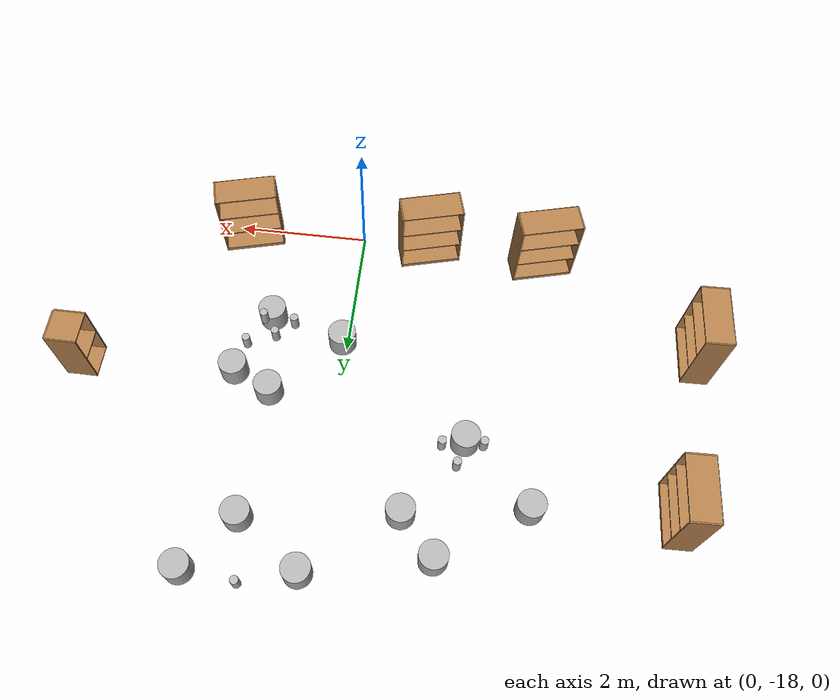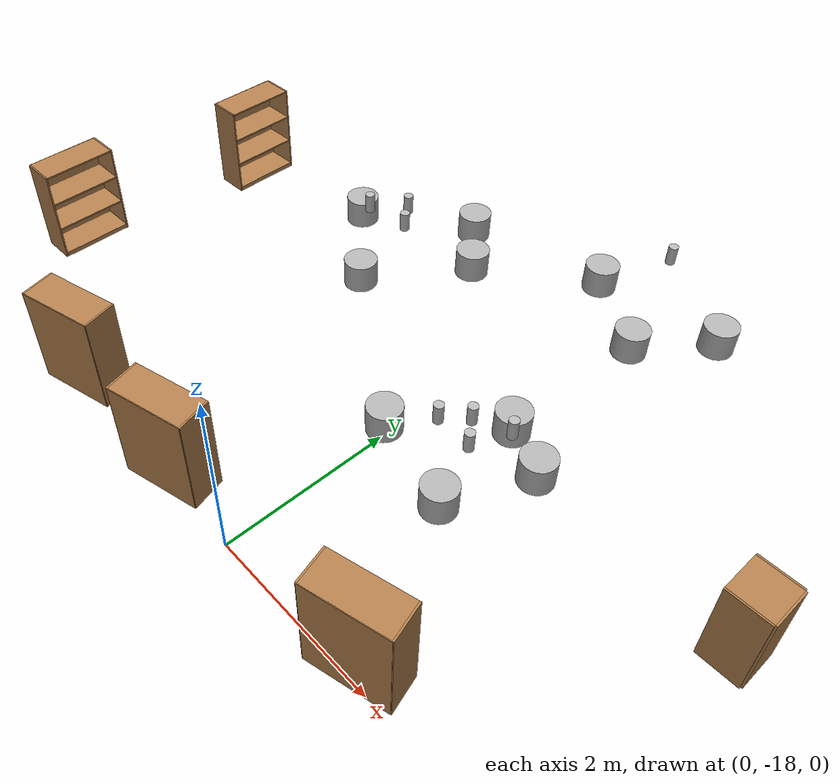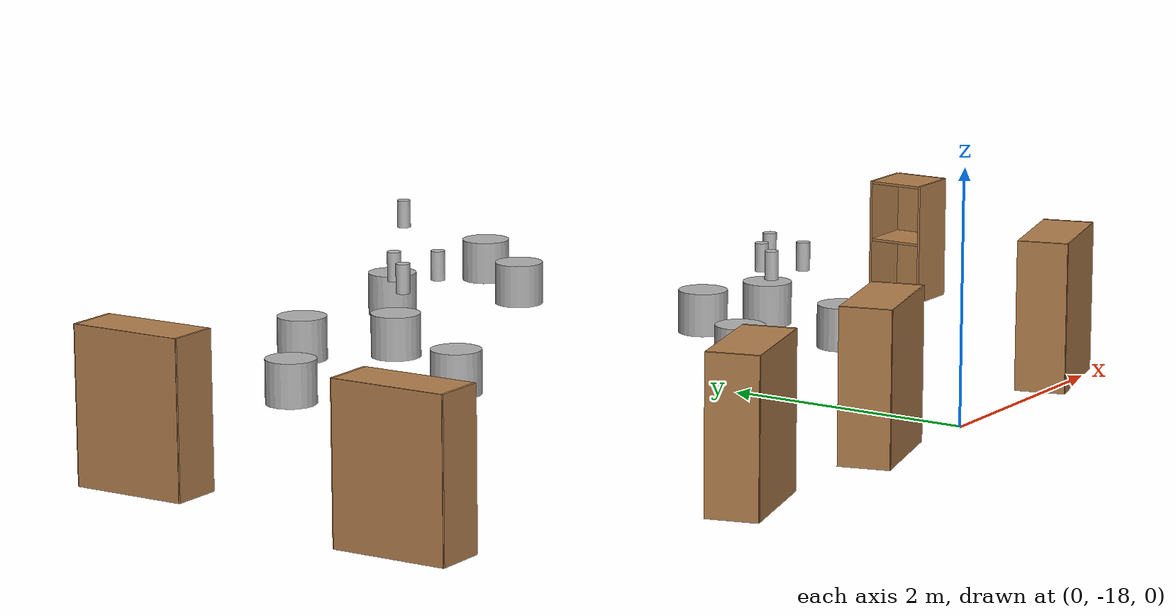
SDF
<sdf version="1.9">
 <world name="world_restaurant">
  <model name="bookshelf">
   <static>true</static>
   <link name="link">
    <inertial>
     <mass>1</mass>
     <inertia><ixx>1</ixx><ixy>0</ixy><ixz>0</ixz><iyy>1</iyy><iyz>0</iyz><izz>1</izz></inertia>
    </inertial>
    <collision name="back">
     <pose>0 0.005 0.6 0 0 0</pose>
     <geometry><box><size>0.9 0.01 1.2</size></box></geometry>
    </collision>
    <visual name="visual1">
     <pose>0 0.005 0.6 0 0 0</pose>
     <geometry><box><size>0.9 0.01 1.2</size></box></geometry>
     <material>
      <script><uri>file://media/materials/scripts/gazebo.material</uri><name>Gazebo/Wood</name></script>
     </material>
    </visual>
    <collision name="left_side">
     <pose>0.45 -0.195 0.6 0 0 0</pose>
     <geometry><box><size>0.02 0.4 1.2</size></box></geometry>
    </collision>
    <visual name="visual2">
     <pose>0.45 -0.195 0.6 0 0 0</pose>
     <geometry><box><size>0.02 0.4 1.2</size></box></geometry>
     <material>
      <script><uri>file://media/materials/scripts/gazebo.material</uri><name>Gazebo/Wood</name></script>
     </material>
    </visual>
    <collision name="right_side">
     <pose>-0.45 -0.195 0.6 0 0 0</pose>
     <geometry><box><size>0.02 0.4 1.2</size></box></geometry>
    </collision>
    <visual name="visual3">
     <pose>-0.45 -0.195 0.6 0 0 0</pose>
     <geometry><box><size>0.02 0.4 1.2</size></box></geometry>
     <material>
      <script><uri>file://media/materials/scripts/gazebo.material</uri><name>Gazebo/Wood</name></script>
     </material>
    </visual>
    <collision name="bottom">
     <pose>0 -0.195 0.03 0 0 0</pose>
     <geometry><box><size>0.88 0.4 0.06</size></box></geometry>
    </collision>
    <visual name="visual4">
     <pose>0 -0.195 0.03 0 0 0</pose>
     <geometry><box><size>0.88 0.4 0.06</size></box></geometry>
     <material>
      <script><uri>file://media/materials/scripts/gazebo.material</uri><name>Gazebo/Wood</name></script>
     </material>
    </visual>
    <collision name="top">
     <pose>0 -0.195 1.19 0 0 0</pose>
     <geometry><box><size>0.88 0.4 0.02</size></box></geometry>
    </collision>
    <visual name="visual5">
     <pose>0 -0.195 1.19 0 0 0</pose>
     <geometry><box><size>0.88 0.4 0.02</size></box></geometry>
     <material>
      <script><uri>file://media/materials/scripts/gazebo.material</uri><name>Gazebo/Wood</name></script>
     </material>
    </visual>
    <collision name="low_shelf">
     <pose>0 -0.195 0.43 0 0 0</pose>
     <geometry><box><size>0.88 0.4 0.02</size></box></geometry>
    </collision>
    <visual name="visual6">
     <pose>0 -0.195 0.43 0 0 0</pose>
     <geometry><box><size>0.88 0.4 0.02</size></box></geometry>
     <material>
      <script><uri>file://media/materials/scripts/gazebo.material</uri><name>Gazebo/Wood</name></script>
     </material>
    </visual>
    <collision name="high_shelf">
     <pose>0 -0.195 0.8 0 0 0</pose>
     <geometry><box><size>0.88 0.4 0.02</size></box></geometry>
    </collision>
    <visual name="visual7">
     <pose>0 -0.195 0.8 0 0 0</pose>
     <geometry><box><size>0.88 0.4 0.02</size></box></geometry>
     <material>
      <script><uri>file://media/materials/scripts/gazebo.material</uri><name>Gazebo/Wood</name></script>
     </material>
    </visual>
   </link>
   <pose>-5 -14 0 0 -0 1.6</pose>
  </model>
  <model name="beer_1_3">
   <link name="link">
    <pose>0 0 0.115 0 -0 0</pose>
    <inertial>
     <mass>0.39000000000000001</mass>
     <inertia>
      <ixx>0.00058</ixx>
      <ixy>0</ixy>
      <ixz>0</ixz>
      <iyy>0.00058</iyy>
      <iyz>0</iyz>
      <izz>0.00019000000000000001</izz>
     </inertia>
    </inertial>
    <collision name="collision">
     <geometry><cylinder><radius>0.055</radius><length>0.23000000000000001</length></cylinder></geometry>
    </collision>
    <visual name="visual">
     <geometry><cylinder><radius>0.055</radius><length>0.23000000000000001</length></cylinder></geometry>
     <material>
      <script>
       <uri>file:///home/joan/ros2_ws/install/turtlebot3/share/turtlebot3/models/worlds/model://beer/materials/scripts</uri>
       <uri>model://beer/materials/textures</uri>
       <name>Beer/Diffuse</name>
      </script>
     </material>
    </visual>
   </link>
   <pose>0.76975 -12.2189 0.775 0 0 -7.8e-05</pose>
   <static>false</static>
  </model>
  <model name="cylinder_1_7">
   <pose>0.131344 -12.5614 0.364799 0 -0 0.0003</pose>
   <link name="cylinder_link">
    <inertial>
     <inertia>
      <ixx>0.14580000000000001</ixx>
      <ixy>0</ixy>
      <ixz>0</ixz>
      <iyy>0.14580000000000001</iyy>
      <iyz>0</iyz>
      <izz>0.125</izz>
     </inertia>
     <mass>1</mass>
    </inertial>
    <collision name="cylinder_collision">
     <geometry>
      <cylinder><radius>0.20000000000000001</radius><length>0.34999999999999998</length></cylinder>
     </geometry>
    </collision>
    <visual name="cylinder_visual">
     <geometry>
      <cylinder><radius>0.20000000000000001</radius><length>0.34999999999999998</length></cylinder>
     </geometry>
     <material>
      <ambient>0.3 0.3 0.3 1</ambient>
      <diffuse>0.7 0.7 0.7 1</diffuse>
      <specular>1 1 1 1</specular>
     </material>
    </visual>
   </link>
   <static>false</static>
  </model>
  <model name="cylinder_1_8">
   <pose>1.66853 -12.4257 0.364799 0 -0 0.0003</pose>
   <link name="cylinder_link">
    <inertial>
     <inertia>
      <ixx>0.14580000000000001</ixx>
      <ixy>0</ixy>
      <ixz>0</ixz>
      <iyy>0.14580000000000001</iyy>
      <iyz>0</iyz>
      <izz>0.125</izz>
     </inertia>
     <mass>1</mass>
    </inertial>
    <collision name="cylinder_collision">
     <geometry>
      <cylinder><radius>0.20000000000000001</radius><length>0.34999999999999998</length></cylinder>
     </geometry>
    </collision>
    <visual name="cylinder_visual">
     <geometry>
      <cylinder><radius>0.20000000000000001</radius><length>0.34999999999999998</length></cylinder>
     </geometry>
     <material>
      <ambient>0.3 0.3 0.3 1</ambient>
      <diffuse>0.7 0.7 0.7 1</diffuse>
      <specular>1 1 1 1</specular>
     </material>
    </visual>
   </link>
   <static>false</static>
  </model>
  <model name="cylinder_1_9">
   <pose>1.04747 -13.2016 0.364799 0 -0 0.0003</pose>
   <link name="cylinder_link">
    <inertial>
     <inertia>
      <ixx>0.14580000000000001</ixx>
      <ixy>0</ixy>
      <ixz>0</ixz>
      <iyy>0.14580000000000001</iyy>
      <iyz>0</iyz>
      <izz>0.125</izz>
     </inertia>
     <mass>1</mass>
    </inertial>
    <collision name="cylinder_collision">
     <geometry>
      <cylinder><radius>0.20000000000000001</radius><length>0.34999999999999998</length></cylinder>
     </geometry>
    </collision>
    <visual name="cylinder_visual">
     <geometry>
      <cylinder><radius>0.20000000000000001</radius><length>0.34999999999999998</length></cylinder>
     </geometry>
     <material>
      <ambient>0.3 0.3 0.3 1</ambient>
      <diffuse>0.7 0.7 0.7 1</diffuse>
      <specular>1 1 1 1</specular>
     </material>
    </visual>
   </link>
   <static>false</static>
  </model>
  <model name="cylinder_1_10">
   <pose>0.974089 -15.0716 0.364799 0 0 -0.005798</pose>
   <link name="cylinder_link">
    <inertial>
     <inertia>
      <ixx>0.14580000000000001</ixx>
      <ixy>0</ixy>
      <ixz>0</ixz>
      <iyy>0.14580000000000001</iyy>
      <iyz>0</iyz>
      <izz>0.125</izz>
     </inertia>
     <mass>1</mass>
    </inertial>
    <collision name="cylinder_collision">
     <geometry>
      <cylinder><radius>0.20000000000000001</radius><length>0.34999999999999998</length></cylinder>
     </geometry>
    </collision>
    <visual name="cylinder_visual">
     <geometry>
      <cylinder><radius>0.20000000000000001</radius><length>0.34999999999999998</length></cylinder>
     </geometry>
     <material>
      <ambient>0.3 0.3 0.3 1</ambient>
      <diffuse>0.7 0.7 0.7 1</diffuse>
      <specular>1 1 1 1</specular>
     </material>
    </visual>
   </link>
   <static>false</static>
  </model>
  <model name="cylinder_1_11">
   <pose>1.13113 -16.2878 0.364799 0 -0 0.0003</pose>
   <link name="cylinder_link">
    <inertial>
     <inertia>
      <ixx>0.14580000000000001</ixx>
      <ixy>0</ixy>
      <ixz>0</ixz>
      <iyy>0.14580000000000001</iyy>
      <iyz>0</iyz>
      <izz>0.125</izz>
     </inertia>
     <mass>1</mass>
    </inertial>
    <collision name="cylinder_collision">
     <geometry>
      <cylinder><radius>0.20000000000000001</radius><length>0.34999999999999998</length></cylinder>
     </geometry>
    </collision>
    <visual name="cylinder_visual">
     <geometry>
      <cylinder><radius>0.20000000000000001</radius><length>0.34999999999999998</length></cylinder>
     </geometry>
     <material>
      <ambient>0.3 0.3 0.3 1</ambient>
      <diffuse>0.7 0.7 0.7 1</diffuse>
      <specular>1 1 1 1</specular>
     </material>
    </visual>
   </link>
   <static>false</static>
  </model>
  <model name="cylinder_1_12">
   <pose>0.05 -16 0.364799 0 -0 0</pose>
   <link name="cylinder_link">
    <inertial>
     <inertia>
      <ixx>0.14580000000000001</ixx>
      <ixy>0</ixy>
      <ixz>0</ixz>
      <iyy>0.14580000000000001</iyy>
      <iyz>0</iyz>
      <izz>0.125</izz>
     </inertia>
     <mass>1</mass>
    </inertial>
    <collision name="cylinder_collision">
     <geometry>
      <cylinder><radius>0.20000000000000001</radius><length>0.34999999999999998</length></cylinder>
     </geometry>
    </collision>
    <visual name="cylinder_visual">
     <geometry>
      <cylinder><radius>0.20000000000000001</radius><length>0.34999999999999998</length></cylinder>
     </geometry>
     <material>
      <ambient>0.3 0.3 0.3 1</ambient>
      <diffuse>0.7 0.7 0.7 1</diffuse>
      <specular>1 1 1 1</specular>
     </material>
    </visual>
   </link>
   <static>false</static>
  </model>
  <model name="cylinder_1_13">
   <pose>1.53352 -15.3395 0.364799 0 -0 0.0003</pose>
   <link name="cylinder_link">
    <inertial>
     <inertia>
      <ixx>0.14580000000000001</ixx>
      <ixy>0</ixy>
      <ixz>0</ixz>
      <iyy>0.14580000000000001</iyy>
      <iyz>0</iyz>
      <izz>0.125</izz>
     </inertia>
     <mass>1</mass>
    </inertial>
    <collision name="cylinder_collision">
     <geometry>
      <cylinder><radius>0.20000000000000001</radius><length>0.34999999999999998</length></cylinder>
     </geometry>
    </collision>
    <visual name="cylinder_visual">
     <geometry>
      <cylinder><radius>0.20000000000000001</radius><length>0.34999999999999998</length></cylinder>
     </geometry>
     <material>
      <ambient>0.3 0.3 0.3 1</ambient>
      <diffuse>0.7 0.7 0.7 1</diffuse>
      <specular>1 1 1 1</specular>
     </material>
    </visual>
   </link>
   <static>false</static>
  </model>
  <model name="cylinder_1_17">
   <pose>-1.58699 -12.9405 0.364799 0 -0 0.0003</pose>
   <link name="cylinder_link">
    <inertial>
     <inertia>
      <ixx>0.14580000000000001</ixx>
      <ixy>0</ixy>
      <ixz>0</ixz>
      <iyy>0.14580000000000001</iyy>
      <iyz>0</iyz>
      <izz>0.125</izz>
     </inertia>
     <mass>1</mass>
    </inertial>
    <collision name="cylinder_collision">
     <geometry>
      <cylinder><radius>0.20000000000000001</radius><length>0.34999999999999998</length></cylinder>
     </geometry>
    </collision>
    <visual name="cylinder_visual">
     <geometry>
      <cylinder><radius>0.20000000000000001</radius><length>0.34999999999999998</length></cylinder>
     </geometry>
     <material>
      <ambient>0.3 0.3 0.3 1</ambient>
      <diffuse>0.7 0.7 0.7 1</diffuse>
      <specular>1 1 1 1</specular>
     </material>
    </visual>
   </link>
   <static>false</static>
  </model>
  <model name="cylinder_1_18">
   <pose>-1.86176 -14.6326 0.364799 0 -0 0.0003</pose>
   <link name="cylinder_link">
    <inertial>
     <inertia>
      <ixx>0.14580000000000001</ixx>
      <ixy>0</ixy>
      <ixz>0</ixz>
      <iyy>0.14580000000000001</iyy>
      <iyz>0</iyz>
      <izz>0.125</izz>
     </inertia>
     <mass>1</mass>
    </inertial>
    <collision name="cylinder_collision">
     <geometry>
      <cylinder><radius>0.20000000000000001</radius><length>0.34999999999999998</length></cylinder>
     </geometry>
    </collision>
    <visual name="cylinder_visual">
     <geometry>
      <cylinder><radius>0.20000000000000001</radius><length>0.34999999999999998</length></cylinder>
     </geometry>
     <material>
      <ambient>0.3 0.3 0.3 1</ambient>
      <diffuse>0.7 0.7 0.7 1</diffuse>
      <specular>1 1 1 1</specular>
     </material>
    </visual>
   </link>
   <static>false</static>
  </model>
  <model name="cylinder_1_19">
   <pose>-2.8 -13.7663 0.364799 0 -0 0</pose>
   <link name="cylinder_link">
    <inertial>
     <inertia>
      <ixx>0.14580000000000001</ixx>
      <ixy>0</ixy>
      <ixz>0</ixz>
      <iyy>0.14580000000000001</iyy>
      <iyz>0</iyz>
      <izz>0.125</izz>
     </inertia>
     <mass>1</mass>
    </inertial>
    <collision name="cylinder_collision">
     <geometry>
      <cylinder><radius>0.20000000000000001</radius><length>0.34999999999999998</length></cylinder>
     </geometry>
    </collision>
    <visual name="cylinder_visual">
     <geometry>
      <cylinder><radius>0.20000000000000001</radius><length>0.34999999999999998</length></cylinder>
     </geometry>
     <material>
      <ambient>0.3 0.3 0.3 1</ambient>
      <diffuse>0.7 0.7 0.7 1</diffuse>
      <specular>1 1 1 1</specular>
     </material>
    </visual>
   </link>
   <static>false</static>
  </model>
  <model name="cylinder_1_20">
   <pose>-1.09581 -13.498 0.364799 0 -0 0.0003</pose>
   <link name="cylinder_link">
    <inertial>
     <inertia>
      <ixx>0.14580000000000001</ixx>
      <ixy>0</ixy>
      <ixz>0</ixz>
      <iyy>0.14580000000000001</iyy>
      <iyz>0</iyz>
      <izz>0.125</izz>
     </inertia>
     <mass>1</mass>
    </inertial>
    <collision name="cylinder_collision">
     <geometry>
      <cylinder><radius>0.20000000000000001</radius><length>0.34999999999999998</length></cylinder>
     </geometry>
    </collision>
    <visual name="cylinder_visual">
     <geometry>
      <cylinder><radius>0.20000000000000001</radius><length>0.34999999999999998</length></cylinder>
     </geometry>
     <material>
      <ambient>0.3 0.3 0.3 1</ambient>
      <diffuse>0.7 0.7 0.7 1</diffuse>
      <specular>1 1 1 1</specular>
     </material>
    </visual>
   </link>
   <static>false</static>
  </model>
  <model name="beer_1_3_1">
   <link name="link">
    <pose>0 0 0.115 0 -0 0</pose>
    <inertial>
     <mass>0.39000000000000001</mass>
     <inertia>
      <ixx>0.00058</ixx>
      <ixy>0</ixy>
      <ixz>0</ixz>
      <iyy>0.00058</iyy>
      <iyz>0</iyz>
      <izz>0.00019000000000000001</izz>
     </inertia>
    </inertial>
    <collision name="collision">
     <geometry><cylinder><radius>0.055</radius><length>0.23000000000000001</length></cylinder></geometry>
    </collision>
    <visual name="visual">
     <geometry><cylinder><radius>0.055</radius><length>0.23000000000000001</length></cylinder></geometry>
     <material>
      <script>
       <uri>file:///home/joan/ros2_ws/install/turtlebot3/share/turtlebot3/models/worlds/model://beer/materials/scripts</uri>
       <uri>model://beer/materials/textures</uri>
       <name>Beer/Diffuse</name>
      </script>
     </material>
    </visual>
   </link>
   <pose>0.917031 -15.6624 0.775 0 0 -7.8e-05</pose>
   <static>false</static>
  </model>
  <model name="beer_1_3_2">
   <link name="link">
    <pose>0 0 0.115 0 -0 0</pose>
    <inertial>
     <mass>0.39000000000000001</mass>
     <inertia>
      <ixx>0.00058</ixx>
      <ixy>0</ixy>
      <ixz>0</ixz>
      <iyy>0.00058</iyy>
      <iyz>0</iyz>
      <izz>0.00019000000000000001</izz>
     </inertia>
    </inertial>
    <collision name="collision">
     <geometry><cylinder><radius>0.055</radius><length>0.23000000000000001</length></cylinder></geometry>
    </collision>
    <visual name="visual">
     <geometry><cylinder><radius>0.055</radius><length>0.23000000000000001</length></cylinder></geometry>
     <material>
      <script>
       <uri>file:///home/joan/ros2_ws/install/turtlebot3/share/turtlebot3/models/worlds/model://beer/materials/scripts</uri>
       <uri>model://beer/materials/textures</uri>
       <name>Beer/Diffuse</name>
      </script>
     </material>
    </visual>
   </link>
   <pose>1.29635 -15.5056 0.775 0 0 -7.8e-05</pose>
   <static>false</static>
  </model>
  <model name="beer_1_3_3">
   <link name="link">
    <pose>0 0 0.115 0 -0 0</pose>
    <inertial>
     <mass>0.39000000000000001</mass>
     <inertia>
      <ixx>0.00058</ixx>
      <ixy>0</ixy>
      <ixz>0</ixz>
      <iyy>0.00058</iyy>
      <iyz>0</iyz>
      <izz>0.00019000000000000001</izz>
     </inertia>
    </inertial>
    <collision name="collision">
     <geometry><cylinder><radius>0.055</radius><length>0.23000000000000001</length></cylinder></geometry>
    </collision>
    <visual name="visual">
     <geometry><cylinder><radius>0.055</radius><length>0.23000000000000001</length></cylinder></geometry>
     <material>
      <script>
       <uri>file:///home/joan/ros2_ws/install/turtlebot3/share/turtlebot3/models/worlds/model://beer/materials/scripts</uri>
       <uri>model://beer/materials/textures</uri>
       <name>Beer/Diffuse</name>
      </script>
     </material>
    </visual>
   </link>
   <pose>1.12425 -15.9241 0.775 0 0 -7.8e-05</pose>
   <static>false</static>
  </model>
  <model name="beer_1_3_4">
   <link name="link">
    <pose>0 0 0.115 0 -0 0</pose>
    <inertial>
     <mass>0.39000000000000001</mass>
     <inertia>
      <ixx>0.00058</ixx>
      <ixy>0</ixy>
      <ixz>0</ixz>
      <iyy>0.00058</iyy>
      <iyz>0</iyz>
      <izz>0.00019000000000000001</izz>
     </inertia>
    </inertial>
    <collision name="collision">
     <geometry><cylinder><radius>0.055</radius><length>0.23000000000000001</length></cylinder></geometry>
    </collision>
    <visual name="visual">
     <geometry><cylinder><radius>0.055</radius><length>0.23000000000000001</length></cylinder></geometry>
     <material>
      <script>
       <uri>file:///home/joan/ros2_ws/install/turtlebot3/share/turtlebot3/models/worlds/model://beer/materials/scripts</uri>
       <uri>model://beer/materials/textures</uri>
       <name>Beer/Diffuse</name>
      </script>
     </material>
    </visual>
   </link>
   <pose>0.688256 -15.8935 0.775 0 0 -7.8e-05</pose>
   <static>false</static>
  </model>
  <model name="beer_1_3_5">
   <link name="link">
    <pose>0 0 0.115 0 -0 0</pose>
    <inertial>
     <mass>0.39000000000000001</mass>
     <inertia>
      <ixx>0.00058</ixx>
      <ixy>0</ixy>
      <ixz>0</ixz>
      <iyy>0.00058</iyy>
      <iyz>0</iyz>
      <izz>0.00019000000000000001</izz>
     </inertia>
    </inertial>
    <collision name="collision">
     <geometry><cylinder><radius>0.055</radius><length>0.23000000000000001</length></cylinder></geometry>
    </collision>
    <visual name="visual">
     <geometry><cylinder><radius>0.055</radius><length>0.23000000000000001</length></cylinder></geometry>
     <material>
      <script>
       <uri>file:///home/joan/ros2_ws/install/turtlebot3/share/turtlebot3/models/worlds/model://beer/materials/scripts</uri>
       <uri>model://beer/materials/textures</uri>
       <name>Beer/Diffuse</name>
      </script>
     </material>
    </visual>
   </link>
   <pose>-1.7523 -13.975 0.975 0 -0 -0.0001</pose>
   <static>false</static>
  </model>
  <model name="beer_1_3_5_1">
   <link name="link">
    <pose>0 0 0.115 0 -0 0</pose>
    <inertial>
     <mass>0.39000000000000001</mass>
     <inertia>
      <ixx>0.00058</ixx>
      <ixy>0</ixy>
      <ixz>0</ixz>
      <iyy>0.00058</iyy>
      <iyz>0</iyz>
      <izz>0.00019000000000000001</izz>
     </inertia>
    </inertial>
    <collision name="collision">
     <geometry><cylinder><radius>0.055</radius><length>0.23000000000000001</length></cylinder></geometry>
    </collision>
    <visual name="visual">
     <geometry><cylinder><radius>0.055</radius><length>0.23000000000000001</length></cylinder></geometry>
     <material>
      <script>
       <uri>file:///home/joan/ros2_ws/install/turtlebot3/share/turtlebot3/models/worlds/model://beer/materials/scripts</uri>
       <uri>model://beer/materials/textures</uri>
       <name>Beer/Diffuse</name>
      </script>
     </material>
    </visual>
   </link>
   <pose>-2.07353 -14.2924 0.975 0 -0 -0.0001</pose>
   <static>false</static>
  </model>
  <model name="beer_1_3_5_2">
   <link name="link">
    <pose>0 0 0.115 0 -0 0</pose>
    <inertial>
     <mass>0.39000000000000001</mass>
     <inertia>
      <ixx>0.00058</ixx>
      <ixy>0</ixy>
      <ixz>0</ixz>
      <iyy>0.00058</iyy>
      <iyz>0</iyz>
      <izz>0.00019000000000000001</izz>
     </inertia>
    </inertial>
    <collision name="collision">
     <geometry><cylinder><radius>0.055</radius><length>0.23000000000000001</length></cylinder></geometry>
    </collision>
    <visual name="visual">
     <geometry><cylinder><radius>0.055</radius><length>0.23000000000000001</length></cylinder></geometry>
     <material>
      <script>
       <uri>file:///home/joan/ros2_ws/install/turtlebot3/share/turtlebot3/models/worlds/model://beer/materials/scripts</uri>
       <uri>model://beer/materials/textures</uri>
       <name>Beer/Diffuse</name>
      </script>
     </material>
    </visual>
   </link>
   <pose>-1.53708 -14.2355 0.975 -0 -0 -0.0001</pose>
   <static>false</static>
  </model>
  <model name="bookshelf_1">
   <static>true</static>
   <link name="link">
    <inertial>
     <mass>1</mass>
     <inertia><ixx>1</ixx><ixy>0</ixy><ixz>0</ixz><iyy>1</iyy><iyz>0</iyz><izz>1</izz></inertia>
    </inertial>
    <collision name="back">
     <pose>0 0.005 0.6 0 0 0</pose>
     <geometry><box><size>0.9 0.01 1.2</size></box></geometry>
    </collision>
    <visual name="visual1">
     <pose>0 0.005 0.6 0 0 0</pose>
     <geometry><box><size>0.9 0.01 1.2</size></box></geometry>
     <material>
      <script><uri>file://media/materials/scripts/gazebo.material</uri><name>Gazebo/Wood</name></script>
     </material>
    </visual>
    <collision name="left_side">
     <pose>0.45 -0.195 0.6 0 0 0</pose>
     <geometry><box><size>0.02 0.4 1.2</size></box></geometry>
    </collision>
    <visual name="visual2">
     <pose>0.45 -0.195 0.6 0 0 0</pose>
     <geometry><box><size>0.02 0.4 1.2</size></box></geometry>
     <material>
      <script><uri>file://media/materials/scripts/gazebo.material</uri><name>Gazebo/Wood</name></script>
     </material>
    </visual>
    <collision name="right_side">
     <pose>-0.45 -0.195 0.6 0 0 0</pose>
     <geometry><box><size>0.02 0.4 1.2</size></box></geometry>
    </collision>
    <visual name="visual3">
     <pose>-0.45 -0.195 0.6 0 0 0</pose>
     <geometry><box><size>0.02 0.4 1.2</size></box></geometry>
     <material>
      <script><uri>file://media/materials/scripts/gazebo.material</uri><name>Gazebo/Wood</name></script>
     </material>
    </visual>
    <collision name="bottom">
     <pose>0 -0.195 0.03 0 0 0</pose>
     <geometry><box><size>0.88 0.4 0.06</size></box></geometry>
    </collision>
    <visual name="visual4">
     <pose>0 -0.195 0.03 0 0 0</pose>
     <geometry><box><size>0.88 0.4 0.06</size></box></geometry>
     <material>
      <script><uri>file://media/materials/scripts/gazebo.material</uri><name>Gazebo/Wood</name></script>
     </material>
    </visual>
    <collision name="top">
     <pose>0 -0.195 1.19 0 0 0</pose>
     <geometry><box><size>0.88 0.4 0.02</size></box></geometry>
    </collision>
    <visual name="visual5">
     <pose>0 -0.195 1.19 0 0 0</pose>
     <geometry><box><size>0.88 0.4 0.02</size></box></geometry>
     <material>
      <script><uri>file://media/materials/scripts/gazebo.material</uri><name>Gazebo/Wood</name></script>
     </material>
    </visual>
    <collision name="low_shelf">
     <pose>0 -0.195 0.43 0 0 0</pose>
     <geometry><box><size>0.88 0.4 0.02</size></box></geometry>
    </collision>
    <visual name="visual6">
     <pose>0 -0.195 0.43 0 0 0</pose>
     <geometry><box><size>0.88 0.4 0.02</size></box></geometry>
     <material>
      <script><uri>file://media/materials/scripts/gazebo.material</uri><name>Gazebo/Wood</name></script>
     </material>
    </visual>
    <collision name="high_shelf">
     <pose>0 -0.195 0.8 0 0 0</pose>
     <geometry><box><size>0.88 0.4 0.02</size></box></geometry>
    </collision>
    <visual name="visual7">
     <pose>0 -0.195 0.8 0 0 0</pose>
     <geometry><box><size>0.88 0.4 0.02</size></box></geometry>
     <material>
      <script><uri>file://media/materials/scripts/gazebo.material</uri><name>Gazebo/Wood</name></script>
     </material>
    </visual>
   </link>
   <pose>-5.31585 -16.5315 0 0 -0 1.6</pose>
  </model>
  <model name="bookshelf_3_1">
   <static>true</static>
   <link name="link">
    <inertial>
     <mass>1</mass>
     <inertia><ixx>1</ixx><ixy>0</ixy><ixz>0</ixz><iyy>1</iyy><iyz>0</iyz><izz>1</izz></inertia>
    </inertial>
    <collision name="back">
     <pose>0 0.005 0.6 0 0 0</pose>
     <geometry><box><size>0.9 0.01 1.2</size></box></geometry>
    </collision>
    <visual name="visual1">
     <pose>0 0.005 0.6 0 0 0</pose>
     <geometry><box><size>0.9 0.01 1.2</size></box></geometry>
     <material>
      <script><uri>file://media/materials/scripts/gazebo.material</uri><name>Gazebo/Wood</name></script>
     </material>
    </visual>
    <collision name="left_side">
     <pose>0.45 -0.195 0.6 0 0 0</pose>
     <geometry><box><size>0.02 0.4 1.2</size></box></geometry>
    </collision>
    <visual name="visual2">
     <pose>0.45 -0.195 0.6 0 0 0</pose>
     <geometry><box><size>0.02 0.4 1.2</size></box></geometry>
     <material>
      <script><uri>file://media/materials/scripts/gazebo.material</uri><name>Gazebo/Wood</name></script>
     </material>
    </visual>
    <collision name="right_side">
     <pose>-0.45 -0.195 0.6 0 0 0</pose>
     <geometry><box><size>0.02 0.4 1.2</size></box></geometry>
    </collision>
    <visual name="visual3">
     <pose>-0.45 -0.195 0.6 0 0 0</pose>
     <geometry><box><size>0.02 0.4 1.2</size></box></geometry>
     <material>
      <script><uri>file://media/materials/scripts/gazebo.material</uri><name>Gazebo/Wood</name></script>
     </material>
    </visual>
    <collision name="bottom">
     <pose>0 -0.195 0.03 0 0 0</pose>
     <geometry><box><size>0.88 0.4 0.06</size></box></geometry>
    </collision>
    <visual name="visual4">
     <pose>0 -0.195 0.03 0 0 0</pose>
     <geometry><box><size>0.88 0.4 0.06</size></box></geometry>
     <material>
      <script><uri>file://media/materials/scripts/gazebo.material</uri><name>Gazebo/Wood</name></script>
     </material>
    </visual>
    <collision name="top">
     <pose>0 -0.195 1.19 0 0 0</pose>
     <geometry><box><size>0.88 0.4 0.02</size></box></geometry>
    </collision>
    <visual name="visual5">
     <pose>0 -0.195 1.19 0 0 0</pose>
     <geometry><box><size>0.88 0.4 0.02</size></box></geometry>
     <material>
      <script><uri>file://media/materials/scripts/gazebo.material</uri><name>Gazebo/Wood</name></script>
     </material>
    </visual>
    <collision name="low_shelf">
     <pose>0 -0.195 0.43 0 0 0</pose>
     <geometry><box><size>0.88 0.4 0.02</size></box></geometry>
    </collision>
    <visual name="visual6">
     <pose>0 -0.195 0.43 0 0 0</pose>
     <geometry><box><size>0.88 0.4 0.02</size></box></geometry>
     <material>
      <script><uri>file://media/materials/scripts/gazebo.material</uri><name>Gazebo/Wood</name></script>
     </material>
    </visual>
    <collision name="high_shelf">
     <pose>0 -0.195 0.8 0 0 0</pose>
     <geometry><box><size>0.88 0.4 0.02</size></box></geometry>
    </collision>
    <visual name="visual7">
     <pose>0 -0.195 0.8 0 0 0</pose>
     <geometry><box><size>0.88 0.4 0.02</size></box></geometry>
     <material>
      <script><uri>file://media/materials/scripts/gazebo.material</uri><name>Gazebo/Wood</name></script>
     </material>
    </visual>
   </link>
   <pose>-2.74454 -18.0376 0 0 -0 -2.8832</pose>
  </model>
  <model name="bookshelf_3_1_1">
   <static>true</static>
   <link name="link">
    <inertial>
     <mass>1</mass>
     <inertia><ixx>1</ixx><ixy>0</ixy><ixz>0</ixz><iyy>1</iyy><iyz>0</iyz><izz>1</izz></inertia>
    </inertial>
    <collision name="back">
     <pose>0 0.005 0.6 0 0 0</pose>
     <geometry><box><size>0.9 0.01 1.2</size></box></geometry>
    </collision>
    <visual name="visual1">
     <pose>0 0.005 0.6 0 0 0</pose>
     <geometry><box><size>0.9 0.01 1.2</size></box></geometry>
     <material>
      <script><uri>file://media/materials/scripts/gazebo.material</uri><name>Gazebo/Wood</name></script>
     </material>
    </visual>
    <collision name="left_side">
     <pose>0.45 -0.195 0.6 0 0 0</pose>
     <geometry><box><size>0.02 0.4 1.2</size></box></geometry>
    </collision>
    <visual name="visual2">
     <pose>0.45 -0.195 0.6 0 0 0</pose>
     <geometry><box><size>0.02 0.4 1.2</size></box></geometry>
     <material>
      <script><uri>file://media/materials/scripts/gazebo.material</uri><name>Gazebo/Wood</name></script>
     </material>
    </visual>
    <collision name="right_side">
     <pose>-0.45 -0.195 0.6 0 0 0</pose>
     <geometry><box><size>0.02 0.4 1.2</size></box></geometry>
    </collision>
    <visual name="visual3">
     <pose>-0.45 -0.195 0.6 0 0 0</pose>
     <geometry><box><size>0.02 0.4 1.2</size></box></geometry>
     <material>
      <script><uri>file://media/materials/scripts/gazebo.material</uri><name>Gazebo/Wood</name></script>
     </material>
    </visual>
    <collision name="bottom">
     <pose>0 -0.195 0.03 0 0 0</pose>
     <geometry><box><size>0.88 0.4 0.06</size></box></geometry>
    </collision>
    <visual name="visual4">
     <pose>0 -0.195 0.03 0 0 0</pose>
     <geometry><box><size>0.88 0.4 0.06</size></box></geometry>
     <material>
      <script><uri>file://media/materials/scripts/gazebo.material</uri><name>Gazebo/Wood</name></script>
     </material>
    </visual>
    <collision name="top">
     <pose>0 -0.195 1.19 0 0 0</pose>
     <geometry><box><size>0.88 0.4 0.02</size></box></geometry>
    </collision>
    <visual name="visual5">
     <pose>0 -0.195 1.19 0 0 0</pose>
     <geometry><box><size>0.88 0.4 0.02</size></box></geometry>
     <material>
      <script><uri>file://media/materials/scripts/gazebo.material</uri><name>Gazebo/Wood</name></script>
     </material>
    </visual>
    <collision name="low_shelf">
     <pose>0 -0.195 0.43 0 0 0</pose>
     <geometry><box><size>0.88 0.4 0.02</size></box></geometry>
    </collision>
    <visual name="visual6">
     <pose>0 -0.195 0.43 0 0 0</pose>
     <geometry><box><size>0.88 0.4 0.02</size></box></geometry>
     <material>
      <script><uri>file://media/materials/scripts/gazebo.material</uri><name>Gazebo/Wood</name></script>
     </material>
    </visual>
    <collision name="high_shelf">
     <pose>0 -0.195 0.8 0 0 0</pose>
     <geometry><box><size>0.88 0.4 0.02</size></box></geometry>
    </collision>
    <visual name="visual7">
     <pose>0 -0.195 0.8 0 0 0</pose>
     <geometry><box><size>0.88 0.4 0.02</size></box></geometry>
     <material>
      <script><uri>file://media/materials/scripts/gazebo.material</uri><name>Gazebo/Wood</name></script>
     </material>
    </visual>
   </link>
   <pose>-0.986636 -18.0809 0 0 -0 -2.8832</pose>
  </model>
  <model name="bookshelf_3_1_1_1">
   <static>true</static>
   <link name="link">
    <inertial>
     <mass>1</mass>
     <inertia><ixx>1</ixx><ixy>0</ixy><ixz>0</ixz><iyy>1</iyy><iyz>0</iyz><izz>1</izz></inertia>
    </inertial>
    <collision name="back">
     <pose>0 0.005 0.6 0 0 0</pose>
     <geometry><box><size>0.9 0.01 1.2</size></box></geometry>
    </collision>
    <visual name="visual1">
     <pose>0 0.005 0.6 0 0 0</pose>
     <geometry><box><size>0.9 0.01 1.2</size></box></geometry>
     <material>
      <script><uri>file://media/materials/scripts/gazebo.material</uri><name>Gazebo/Wood</name></script>
     </material>
    </visual>
    <collision name="left_side">
     <pose>0.45 -0.195 0.6 0 0 0</pose>
     <geometry><box><size>0.02 0.4 1.2</size></box></geometry>
    </collision>
    <visual name="visual2">
     <pose>0.45 -0.195 0.6 0 0 0</pose>
     <geometry><box><size>0.02 0.4 1.2</size></box></geometry>
     <material>
      <script><uri>file://media/materials/scripts/gazebo.material</uri><name>Gazebo/Wood</name></script>
     </material>
    </visual>
    <collision name="right_side">
     <pose>-0.45 -0.195 0.6 0 0 0</pose>
     <geometry><box><size>0.02 0.4 1.2</size></box></geometry>
    </collision>
    <visual name="visual3">
     <pose>-0.45 -0.195 0.6 0 0 0</pose>
     <geometry><box><size>0.02 0.4 1.2</size></box></geometry>
     <material>
      <script><uri>file://media/materials/scripts/gazebo.material</uri><name>Gazebo/Wood</name></script>
     </material>
    </visual>
    <collision name="bottom">
     <pose>0 -0.195 0.03 0 0 0</pose>
     <geometry><box><size>0.88 0.4 0.06</size></box></geometry>
    </collision>
    <visual name="visual4">
     <pose>0 -0.195 0.03 0 0 0</pose>
     <geometry><box><size>0.88 0.4 0.06</size></box></geometry>
     <material>
      <script><uri>file://media/materials/scripts/gazebo.material</uri><name>Gazebo/Wood</name></script>
     </material>
    </visual>
    <collision name="top">
     <pose>0 -0.195 1.19 0 0 0</pose>
     <geometry><box><size>0.88 0.4 0.02</size></box></geometry>
    </collision>
    <visual name="visual5">
     <pose>0 -0.195 1.19 0 0 0</pose>
     <geometry><box><size>0.88 0.4 0.02</size></box></geometry>
     <material>
      <script><uri>file://media/materials/scripts/gazebo.material</uri><name>Gazebo/Wood</name></script>
     </material>
    </visual>
    <collision name="low_shelf">
     <pose>0 -0.195 0.43 0 0 0</pose>
     <geometry><box><size>0.88 0.4 0.02</size></box></geometry>
    </collision>
    <visual name="visual6">
     <pose>0 -0.195 0.43 0 0 0</pose>
     <geometry><box><size>0.88 0.4 0.02</size></box></geometry>
     <material>
      <script><uri>file://media/materials/scripts/gazebo.material</uri><name>Gazebo/Wood</name></script>
     </material>
    </visual>
    <collision name="high_shelf">
     <pose>0 -0.195 0.8 0 0 0</pose>
     <geometry><box><size>0.88 0.4 0.02</size></box></geometry>
    </collision>
    <visual name="visual7">
     <pose>0 -0.195 0.8 0 0 0</pose>
     <geometry><box><size>0.88 0.4 0.02</size></box></geometry>
     <material>
      <script><uri>file://media/materials/scripts/gazebo.material</uri><name>Gazebo/Wood</name></script>
     </material>
    </visual>
   </link>
   <pose>1.80897 -18.0501 0 0 -0 -2.8832</pose>
  </model>
  <model name="cabinet_3">
   <static>true</static>
   <link name="cabinet_bottom_plate">
    <inertial>
     <pose>0 0 -1 0 0 0</pose>
     <inertia>
      <ixx>2.0499999999999998</ixx>
      <ixy>0</ixy>
      <ixz>0</ixz>
      <iyy>2.0499999999999998</iyy>
      <iyz>0</iyz>
      <izz>2.0499999999999998</izz>
     </inertia>
     <mass>25</mass>
    </inertial>
    <collision name="cabinet_bottom_plate_geom">
     <pose>0 0 0.010000 0 0 0</pose>
     <geometry><box><size>0.45 0.45 0.02</size></box></geometry>
    </collision>
    <visual name="cabinet_bottom_plate_geom_visual">
     <pose>0 0 0.010000 0 0 0</pose>
     <geometry><box><size>0.45 0.45 0.02</size></box></geometry>
     <material>
      <script><uri>file://media/materials/scripts/gazebo.material</uri><name>Gazebo/Wood</name></script>
     </material>
    </visual>
    <collision name="cabinet_bottom_plate_geom_cabinet_back_plate">
     <pose>0.235000 0 0.510000 0 0 0</pose>
     <geometry><box><size>0.02 0.45 1.02</size></box></geometry>
    </collision>
    <visual name="cabinet_bottom_plate_geom_cabinet_back_plate_visual">
     <pose>0.235000 0 0.510000 0 0 0</pose>
     <geometry><box><size>0.02 0.45 1.02</size></box></geometry>
     <material>
      <script><uri>file://media/materials/scripts/gazebo.material</uri><name>Gazebo/Wood</name></script>
     </material>
    </visual>
    <collision name="cabinet_bottom_plate_geom_cabinet_left_plate">
     <pose>0 0.235000 0.510000 0 0 0</pose>
     <geometry><box><size>0.45 0.02 1.02</size></box></geometry>
    </collision>
    <visual name="cabinet_bottom_plate_geom_cabinet_left_plate_visual">
     <pose>0 0.235000 0.510000 0 0 0</pose>
     <geometry><box><size>0.45 0.02 1.02</size></box></geometry>
     <material>
      <script><uri>file://media/materials/scripts/gazebo.material</uri><name>Gazebo/Wood</name></script>
     </material>
    </visual>
    <collision name="cabinet_bottom_plate_geom_cabinet_middle_plate">
     <pose>0 0 0.510000 0 0 0</pose>
     <geometry><box><size>0.45 0.45 0.02</size></box></geometry>
    </collision>
    <visual name="cabinet_bottom_plate_geom_cabinet_middle_plate_visual">
     <pose>0 0 0.510000 0 0 0</pose>
     <geometry><box><size>0.45 0.45 0.02</size></box></geometry>
     <material>
      <script><uri>file://media/materials/scripts/gazebo.material</uri><name>Gazebo/Wood</name></script>
     </material>
    </visual>
    <collision name="cabinet_bottom_plate_geom_cabinet_right_plate">
     <pose>0 -0.235000 0.510000 0 0 0</pose>
     <geometry><box><size>0.45 0.02 1.02</size></box></geometry>
    </collision>
    <visual name="cabinet_bottom_plate_geom_cabinet_right_plate_visual">
     <pose>0 -0.235000 0.510000 0 0 0</pose>
     <geometry><box><size>0.45 0.02 1.02</size></box></geometry>
     <material>
      <script><uri>file://media/materials/scripts/gazebo.material</uri><name>Gazebo/Wood</name></script>
     </material>
    </visual>
    <collision name="cabinet_bottom_plate_geom_cabinet_top_plate">
     <pose>0 0 1.010000 0 0 0</pose>
     <geometry><box><size>0.45 0.45 0.02</size></box></geometry>
    </collision>
    <visual name="cabinet_bottom_plate_geom_cabinet_top_plate_visual">
     <pose>0 0 1.010000 0 0 0</pose>
     <geometry><box><size>0.45 0.45 0.02</size></box></geometry>
     <material>
      <script><uri>file://media/materials/scripts/gazebo.material</uri><name>Gazebo/Wood</name></script>
     </material>
    </visual>
   </link>
   <pose>3.8205 -15.3587 0 0 -0 0</pose>
  </model>
 </world>
</sdf>
